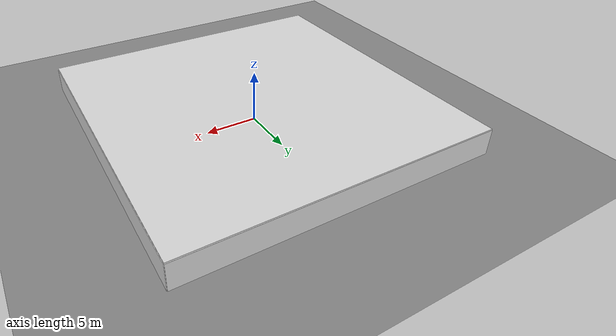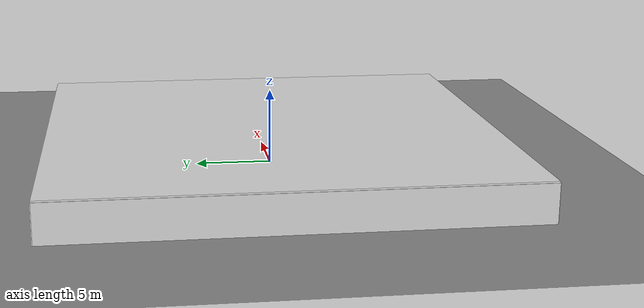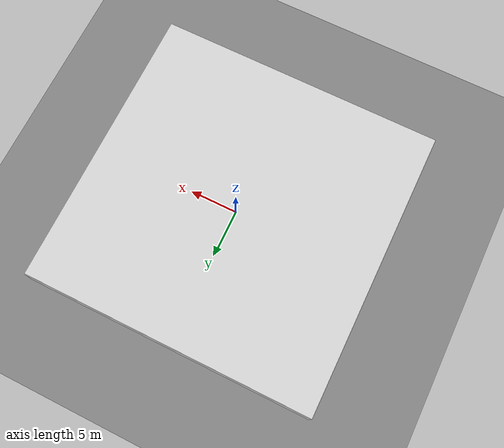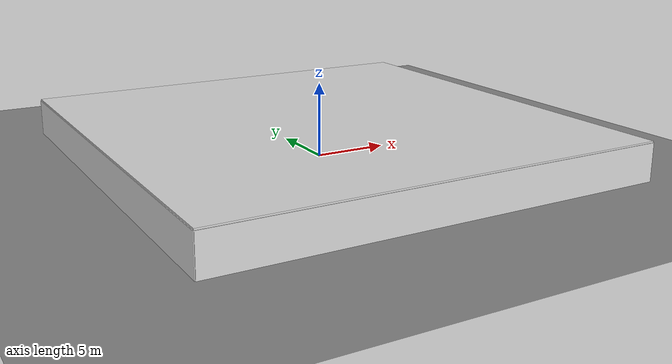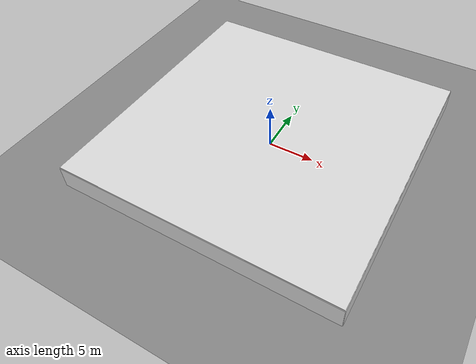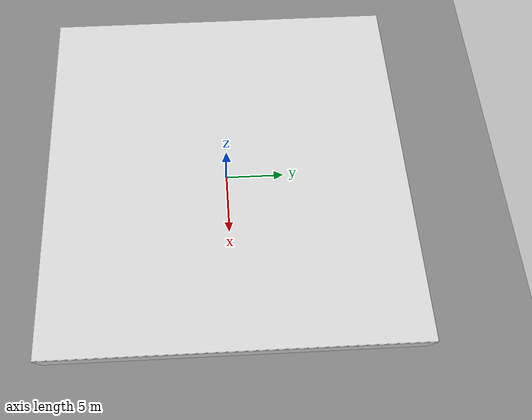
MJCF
<mujoco model="scene">

  <visual>
    <headlight diffuse="0.6 0.6 0.6" ambient="0.3 0.3 0.3" specular="0 0 0"/>
    <rgba haze="0.871 0.616 0.4 0.5"/>
    <global azimuth="-130" elevation="-20"/>
  </visual>

  <asset>
    <texture builtin="gradient" height="100" rgb1="0.9 0.9 0.9" rgb2="0.55 0.25 0.0" type="skybox" width="100"/>
    <include file="../../room/objects/materials.xml"/>
  </asset>

    <worldbody>
        <geom name="floor" friction="1 .1 .1" pos="0 0 0" size="0 0 0.125" type="plane" material="mat_floor" condim="3" conaffinity="1" contype="1" group="2"/>
        <light cutoff="1000" diffuse="1.5 1.5 1.5" dir="-0 0 -1.3" directional="true" exponent="10" pos="0 0 10.3" specular=".1 .1 .1" castshadow="false"/>

        <geom name="wall_negx" type="box" pos="-15.0 0.0 1.25" size="0.05 15.0 1.25" material="mat_wall"/>
        <geom name="wall_posx" type="box" pos=" 15.0 0.0 1.25" size="0.05 15.0 1.25" material="mat_wall"/>
        <geom name="wall_negy" type="box" pos="0.0 -15.0 1.25" size="15.0 0.05 1.25" material="mat_wall"/>
        <geom name="wall_posy" type="box" pos="0.0  15.0 1.25" size="15.0 0.05 1.25" material="mat_wall"/>

        <geom name="ceiling" type="box"
          pos="0 0 2.55"
          size="15.0 15.0 0.05"
          material="mat_wall"
          contype="1" conaffinity="1"
        />

        <!-- SCENARIO: FT1_C_FL_N | Single couch, FL view, x=2.5m -->

        <!-- TARGET: couch -->
        <body name="couch_target" pos="2.5000 0.0000 0.0" euler="0 0 2.3562">
          <include file="../../room/objects/couch.xml"/>
        </body>

        <!-- DISTRACTORS: none -->

    </worldbody>
</mujoco>

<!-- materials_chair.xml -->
<mujoco>
  <texture name="tex_wood_chair" type="2d" file="oak_veneer_01_diff_2k.png"/>
  <material name="mat_wood_chair"
            texture="tex_wood_chair"
            texrepeat="1.2 1.2"
            texuniform="true"
            rgba="1 1 1 1"
            specular="0.22"
            shininess="0.35"
            reflectance="0.04"/>
</mujoco>

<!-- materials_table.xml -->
<mujoco>
  <texture name="tex_wood_table" type="2d" file="wood_table_001_diff_2k.png"/>
  <material name="mat_wood_table"
            texture="tex_wood_table"
            texrepeat="1.2 1.2"
            texuniform="true"
            rgba="1 1 1 1"
            specular="0.22"
            shininess="0.35"
            reflectance="0.04"/>
</mujoco>

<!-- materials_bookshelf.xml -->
<mujoco>
  <texture name="tex_bookshelf_wood"
           type="2d"
           file="oak_veneer_01_diff_2k.png"/>

  <material name="mat_wood_bookshelf"
            texture="tex_bookshelf_wood"
            texrepeat="1.2 1.2"
            texuniform="true"
            rgba="1 1 1 1"
            specular="0.22"
            shininess="0.35"
            reflectance="0.04"/>
</mujoco>

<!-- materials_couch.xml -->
<mujoco>
  <texture name="tex_wood_couch" type="2d" file="wood_table_001_diff_2k.png"/>
  <material name="mat_wood_couch"
            texture="tex_wood_couch"
            texrepeat="1.2 1.2"
            texuniform="true"
            rgba="1 1 1 1"
            specular="0.22"
            shininess="0.35"
            reflectance="0.04"/>

  <texture name="tex_fabric" type="2d" file="rough_linen_diff_2k.png"/>
  <material name="mat_fabric"
            texture="tex_fabric"
            texrepeat="1.2 1.2"
            texuniform="true"
            rgba="1 1 1 1"
            specular="0.10"
            shininess="0.08"
            reflectance="0.01"/>
</mujoco>

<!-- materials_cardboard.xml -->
<mujoco>
  <texture name="tex_cardboard" type="2d" file="cardboard.png"/>
  <material name="mat_cardboard"
            texture="tex_cardboard"
            texrepeat="1.2 1.2"
            texuniform="true"
            rgba="1 1 1 1"
            specular="0.10"
            shininess="0.08"
            reflectance="0.01"/>
</mujoco>

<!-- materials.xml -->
<mujoco>
  <material name="mat_wall" rgba="0.85 0.85 0.85 1"/>
  <include file="materials_chair.xml"/>

  <include file="materials_table.xml"/>

  <include file="materials_bookshelf.xml"/>
  <material name="mat_book_red" rgba="0.70 0.18 0.16 1"/>
  <material name="mat_book_blue" rgba="0.16 0.31 0.62 1"/>
  <material name="mat_book_green" rgba="0.22 0.45 0.24 1"/>
  <material name="mat_book_yellow" rgba="0.78 0.66 0.22 1"/>
  <material name="mat_book_dark" rgba="0.20 0.18 0.17 1"/>

  <include file="materials_couch.xml"/>
  <include file="materials_cardboard.xml"/>

  <texture name="tex_metal" type="2d" file="metal.png"/>
  <material name="mat_metal" texture="tex_metal" texrepeat="2 2" reflectance="0.3"/>
  <material name="mat_trash_can_dark_green"
            texture="tex_metal"
            texrepeat="2 2"
            rgba="0.10 0.18 0.12 1"
            specular="0.18"
            shininess="0.20"
            reflectance="0.02"/>

  <texture name="tex_floor" type="2d" builtin="checker" width="512" height="512"
           rgb1="0.55 0.55 0.55" rgb2="0.50 0.50 0.50"/>
  <material name="mat_floor" texture="tex_floor" texrepeat="4 4" reflectance="0.00"/>

</mujoco>

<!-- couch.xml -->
<mujoco>
<body>
  <!-- legs -->
  <geom name="couch_leg_fl" type="box"
        pos="-0.50 0.26 0.04" size="0.03 0.03 0.04"
        material="mat_wood_couch"/>
  <geom name="couch_leg_fr" type="box"
        pos="0.50 0.26 0.04" size="0.03 0.03 0.04"
        material="mat_wood_couch"/>
  <geom name="couch_leg_rl" type="box"
        pos="-0.50 -0.26 0.04" size="0.03 0.03 0.04"
        material="mat_wood_couch"/>
  <geom name="couch_leg_rr" type="box"
        pos="0.50 -0.26 0.04" size="0.03 0.03 0.04"
        material="mat_wood_couch"/>

  <!-- soft seat base -->
  <geom name="couch_seat_base" type="box"
        pos="0 0 0.16" size="0.54 0.27 0.08"
        material="mat_fabric"/>
  <geom name="couch_seat_front_roll" type="capsule"
        fromto="-0.48 0.24 0.195 0.48 0.24 0.195"
        size="0.055"
        material="mat_fabric"/>

  <!-- seat cushions -->
  <geom name="couch_seat_left" type="ellipsoid"
        pos="-0.22 0.02 0.255" size="0.17 0.21 0.065"
        material="mat_fabric"/>
  <geom name="couch_seat_mid" type="ellipsoid"
        pos="0.00 0.02 0.255" size="0.15 0.21 0.065"
        material="mat_fabric"/>
  <geom name="couch_seat_right" type="ellipsoid"
        pos="0.22 0.02 0.255" size="0.17 0.21 0.065"
        material="mat_fabric"/>

  <!-- back cushions -->
  <geom name="couch_back_core" type="box"
        pos="0 -0.160 0.37" size="0.53 0.105 0.16"
        material="mat_fabric"/>
  <geom name="couch_back_top_roll" type="capsule"
        fromto="-0.48 -0.145 0.52 0.48 -0.145 0.52"
        size="0.060"
        material="mat_fabric"/>
  <geom name="couch_back_left" type="ellipsoid"
        pos="-0.22 -0.095 0.39" size="0.16 0.100 0.15"
        material="mat_fabric"/>
  <geom name="couch_back_mid" type="ellipsoid"
        pos="0.00 -0.095 0.39" size="0.14 0.100 0.15"
        material="mat_fabric"/>
  <geom name="couch_back_right" type="ellipsoid"
        pos="0.22 -0.095 0.39" size="0.16 0.100 0.15"
        material="mat_fabric"/>

  <!-- softer armrests -->
  <geom name="couch_arm_left_core" type="box"
        pos="-0.49 0.02 0.34" size="0.055 0.24 0.15"
        material="mat_fabric"/>
  <geom name="couch_arm_right_core" type="box"
        pos="0.49 0.02 0.34" size="0.055 0.24 0.15"
        material="mat_fabric"/>
  <geom name="couch_arm_left_top" type="capsule"
        fromto="-0.49 -0.19 0.49 -0.49 0.18 0.49"
        size="0.050"
        material="mat_fabric"/>
  <geom name="couch_arm_right_top" type="capsule"
        fromto="0.49 -0.19 0.49 0.49 0.18 0.49"
        size="0.050"
        material="mat_fabric"/>
</body>
</mujoco>
